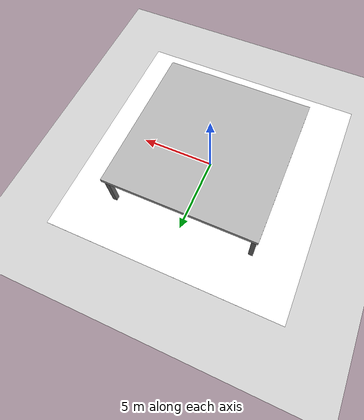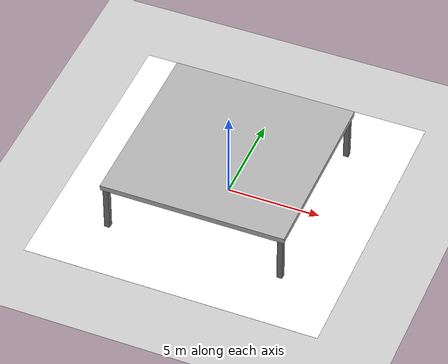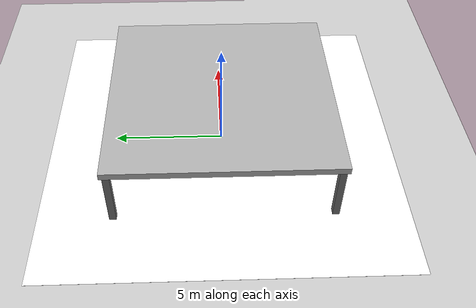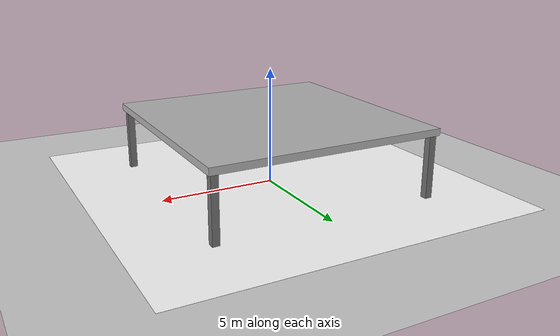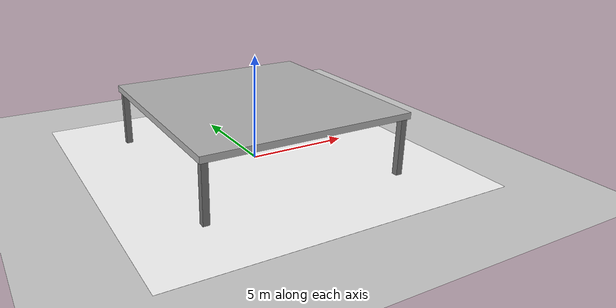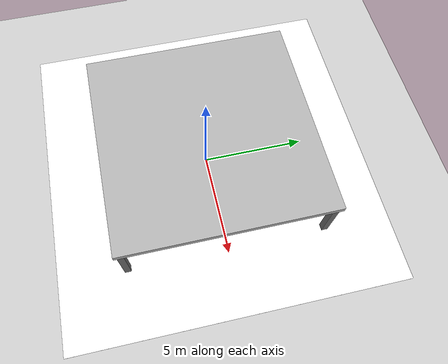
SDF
<?xml version="1.0" encoding="UTF-8"?>
<sdf version="1.9">
  <world name="v7_four_post_canopy">
    <physics type="ode">
      <max_step_size>0.004</max_step_size>
      <real_time_factor>1.0</real_time_factor>
      <real_time_update_rate>250</real_time_update_rate>
    </physics>
    <gravity>0 0 -9.8</gravity>
    <magnetic_field>6e-06 2.3e-05 -4.2e-05</magnetic_field>
    <atmosphere type="adiabatic"/>
    <scene>
      <grid>false</grid>
      <ambient>0.4 0.4 0.4 1</ambient>
      <background>0.7 0.7 0.7 1</background>
      <shadows>false</shadows>
    </scene>

    <model name="ground_plane">
      <static>true</static>
      <link name="link">
        <collision name="collision">
          <geometry><plane><normal>0 0 1</normal><size>1 1</size></plane></geometry>
          <surface><friction><ode/></friction><bounce/><contact/></surface>
        </collision>
        <visual name="visual">
          <geometry><plane><normal>0 0 1</normal><size>500 500</size></plane></geometry>
          <material><ambient>0.8 0.8 0.8 1</ambient><diffuse>0.8 0.8 0.8 1</diffuse><specular>0.1 0.1 0.1 1</specular></material>
        </visual>
      </link>
    </model>

    <!-- Single lightweight, deterministic texture for optical-flow tracking. -->
    <include>
      <uri>model://v7_optical_flow_floor</uri>
      <name>v7_optical_flow_floor</name>
      <pose>0 0 0.020 0 0 0</pose>
    </include>

    <model name="four_post_canopy">
      <static>true</static>
      <link name="canopy_roof">
        <!-- Roof top surface is exactly 3.00 m; underside is 2.70 m. -->
        <pose>0 0 2.85 0 0 0</pose>
        <collision name="collision">
          <geometry><box><size>10.0 10.0 0.30</size></box></geometry>
        </collision>
        <visual name="visual">
          <geometry><box><size>10.0 10.0 0.30</size></box></geometry>
          <material><ambient>0.70 0.70 0.70 1</ambient><diffuse>0.70 0.70 0.70 1</diffuse><specular>0.15 0.15 0.15 1</specular></material>
        </visual>
      </link>
      <link name="post_1">
        <pose>4.75 4.75 1.35 0 0 0</pose>
        <collision name="collision"><geometry><box><size>0.30 0.30 2.70</size></box></geometry></collision>
        <visual name="visual"><geometry><box><size>0.30 0.30 2.70</size></box></geometry><material><ambient>0.45 0.45 0.45 1</ambient><diffuse>0.45 0.45 0.45 1</diffuse><specular>0.10 0.10 0.10 1</specular></material></visual>
      </link>
      <link name="post_2">
        <pose>4.75 -4.75 1.35 0 0 0</pose>
        <collision name="collision"><geometry><box><size>0.30 0.30 2.70</size></box></geometry></collision>
        <visual name="visual"><geometry><box><size>0.30 0.30 2.70</size></box></geometry><material><ambient>0.45 0.45 0.45 1</ambient><diffuse>0.45 0.45 0.45 1</diffuse><specular>0.10 0.10 0.10 1</specular></material></visual>
      </link>
      <link name="post_3">
        <pose>-4.75 4.75 1.35 0 0 0</pose>
        <collision name="collision"><geometry><box><size>0.30 0.30 2.70</size></box></geometry></collision>
        <visual name="visual"><geometry><box><size>0.30 0.30 2.70</size></box></geometry><material><ambient>0.45 0.45 0.45 1</ambient><diffuse>0.45 0.45 0.45 1</diffuse><specular>0.10 0.10 0.10 1</specular></material></visual>
      </link>
      <link name="post_4">
        <pose>-4.75 -4.75 1.35 0 0 0</pose>
        <collision name="collision"><geometry><box><size>0.30 0.30 2.70</size></box></geometry></collision>
        <visual name="visual"><geometry><box><size>0.30 0.30 2.70</size></box></geometry><material><ambient>0.45 0.45 0.45 1</ambient><diffuse>0.45 0.45 0.45 1</diffuse><specular>0.10 0.10 0.10 1</specular></material></visual>
      </link>
    </model>

    <light name="sunUTC" type="directional">
      <pose>0 0 500 0 0 0</pose>
      <cast_shadows>false</cast_shadows>
      <intensity>1</intensity>
      <direction>0.001 0.625 -0.78</direction>
      <diffuse>0.904 0.904 0.904 1</diffuse>
      <specular>0.271 0.271 0.271 1</specular>
      <attenuation><range>2000</range><linear>0</linear><constant>1</constant><quadratic>0</quadratic></attenuation>
    </light>
    <spherical_coordinates>
      <surface_model>EARTH_WGS84</surface_model>
      <world_frame_orientation>ENU</world_frame_orientation>
      <latitude_deg>47.397971057728974</latitude_deg>
      <longitude_deg>8.546163739800146</longitude_deg>
      <elevation>0</elevation>
    </spherical_coordinates>
  </world>
</sdf>

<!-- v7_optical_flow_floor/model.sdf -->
<sdf version="1.9">
  <model name="v7_optical_flow_floor">
    <static>true</static>
    <link name="floor_texture_link">
      <visual name="floor_texture_visual">
        <cast_shadows>false</cast_shadows>
        <geometry>
          <box><size>16 16 0.004</size></box>
        </geometry>
        <material>
          <ambient>1 1 1 1</ambient>
          <diffuse>1 1 1 1</diffuse>
          <specular>0 0 0 1</specular>
          <pbr>
            <metal>
              <albedo_map>model://v7_optical_flow_floor/materials/textures/optical_flow_floor.png</albedo_map>
              <roughness>1.0</roughness>
              <metalness>0.0</metalness>
            </metal>
          </pbr>
        </material>
      </visual>
    </link>
  </model>
</sdf>
